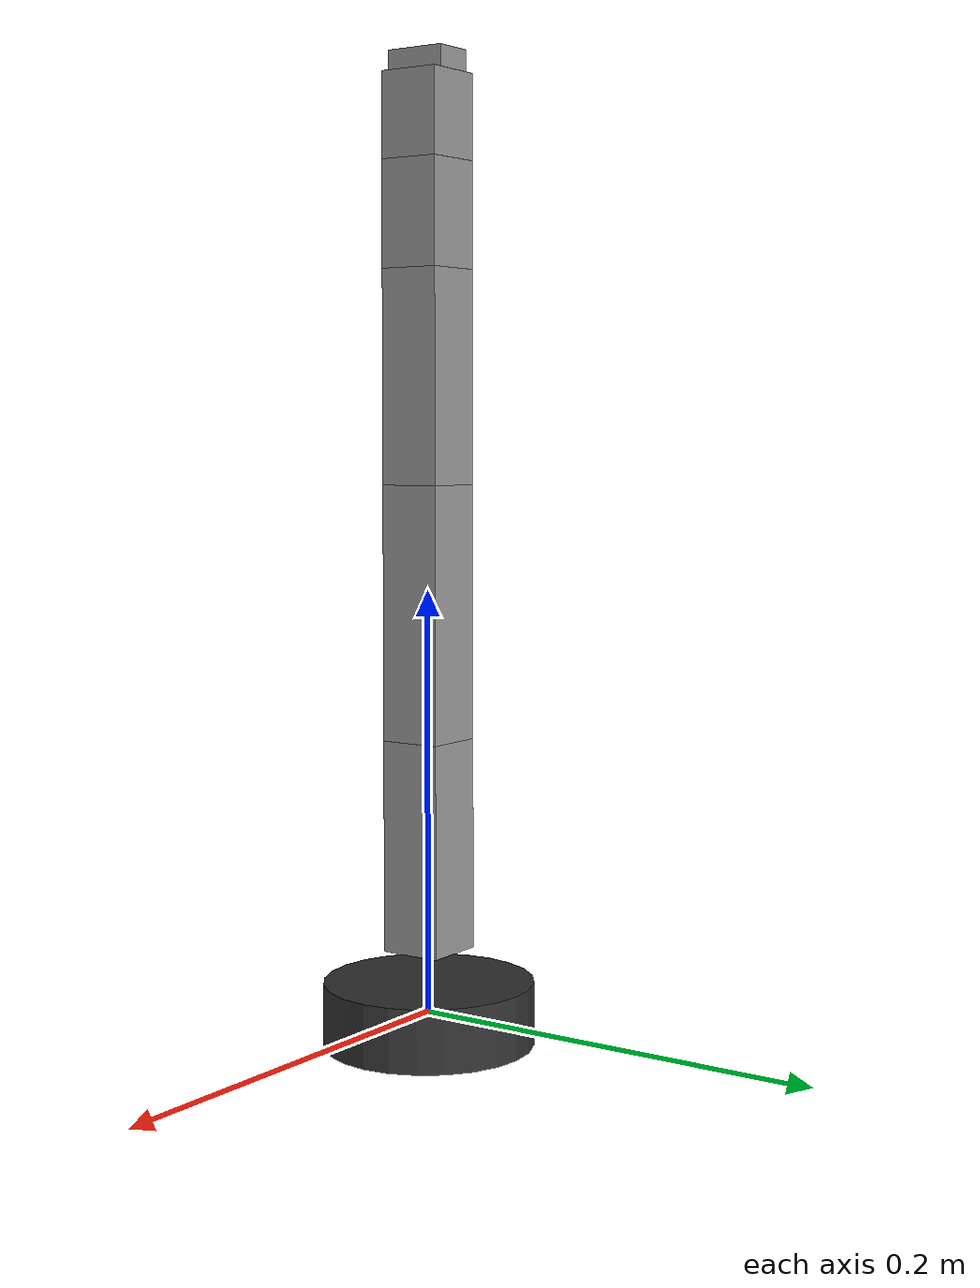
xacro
<?xml version="1.0"?>
<robot name="six_axis_arm" xmlns:xacro="http://www.ros.org/wiki/xacro">

  <material name="grey"><color rgba="0.6 0.6 0.6 1"/></material>
  <material name="dark"><color rgba="0.2 0.2 0.2 1"/></material>

  <link name="base_link">
    <visual>
      <geometry><cylinder radius="0.05" length="0.03"/></geometry>
      <material name="dark"/>
    </visual>
    <collision>
      <geometry><cylinder radius="0.05" length="0.03"/></geometry>
    </collision>
    <inertial>
      <mass value="0.3"/>
      <inertia ixx="0.001" ixy="0" ixz="0" iyy="0.001" iyz="0" izz="0.001"/>
    </inertial>
  </link>

  <xacro:macro name="link_box" params="name length mass">
    <link name="${name}">
      <visual>
        <origin xyz="0 0 ${length/2}" rpy="0 0 0"/>
        <geometry><box size="0.03 0.03 ${length}"/></geometry>
        <material name="grey"/>
      </visual>
      <collision>
        <origin xyz="0 0 ${length/2}" rpy="0 0 0"/>
        <geometry><box size="0.03 0.03 ${length}"/></geometry>
      </collision>
      <inertial>
        <origin xyz="0 0 ${length/2}" rpy="0 0 0"/>
        <mass value="${mass}"/>
        <inertia ixx="0.0005" ixy="0" ixz="0" iyy="0.0005" iyz="0" izz="0.0002"/>
      </inertial>
    </link>
  </xacro:macro>

  <xacro:link_box name="link_shoulder" length="0.10" mass="0.15"/>
  <xacro:link_box name="link_upper_arm" length="0.12" mass="0.15"/>
  <xacro:link_box name="link_forearm" length="0.10" mass="0.10"/>
  <xacro:link_box name="link_wrist" length="0.05" mass="0.05"/>
  <xacro:link_box name="link_gripper_base" length="0.04" mass="0.05"/>

  <!-- 0: base rotation, MG995, +/-90 deg about Z -->
  <joint name="joint_base" type="revolute">
    <parent link="base_link"/>
    <child link="link_shoulder"/>
    <origin xyz="0 0 0.03" rpy="0 0 0"/>
    <axis xyz="0 0 1"/>
    <limit lower="-1.5708" upper="1.5708" effort="10" velocity="1.5"/>
  </joint>

  <!-- 1: shoulder, MG995, +/-90 deg about Y -->
  <joint name="joint_shoulder" type="revolute">
    <parent link="link_shoulder"/>
    <child link="link_upper_arm"/>
    <origin xyz="0 0 0.10" rpy="0 0 0"/>
    <axis xyz="0 1 0"/>
    <limit lower="-1.5708" upper="1.5708" effort="10" velocity="1.5"/>
  </joint>

  <!-- 2: elbow, MG995, +/-90 deg about Y -->
  <joint name="joint_elbow" type="revolute">
    <parent link="link_upper_arm"/>
    <child link="link_forearm"/>
    <origin xyz="0 0 0.12" rpy="0 0 0"/>
    <axis xyz="0 1 0"/>
    <limit lower="-1.5708" upper="1.5708" effort="8" velocity="1.5"/>
  </joint>

  <!-- 3: wrist pitch, SG90, +/-90 deg about Y -->
  <joint name="joint_wrist_pitch" type="revolute">
    <parent link="link_forearm"/>
    <child link="link_wrist"/>
    <origin xyz="0 0 0.10" rpy="0 0 0"/>
    <axis xyz="0 1 0"/>
    <limit lower="-1.5708" upper="1.5708" effort="2" velocity="2.0"/>
  </joint>

  <!-- 4: wrist roll, SG90, +/-90 deg about Z -->
  <joint name="joint_wrist_roll" type="revolute">
    <parent link="link_wrist"/>
    <child link="link_gripper_base"/>
    <origin xyz="0 0 0.05" rpy="0 0 0"/>
    <axis xyz="0 0 1"/>
    <limit lower="-1.5708" upper="1.5708" effort="1" velocity="2.0"/>
  </joint>

  <!-- 5: gripper open/close, SG90 -->
  <link name="link_gripper_finger">
    <visual>
      <geometry><box size="0.02 0.03 0.02"/></geometry>
      <material name="grey"/>
    </visual>
    <collision>
      <geometry><box size="0.02 0.03 0.02"/></geometry>
    </collision>
    <inertial>
      <mass value="0.02"/>
      <inertia ixx="0.0001" ixy="0" ixz="0" iyy="0.0001" iyz="0" izz="0.0001"/>
    </inertial>
  </link>

  <joint name="joint_gripper" type="revolute">
    <parent link="link_gripper_base"/>
    <child link="link_gripper_finger"/>
    <origin xyz="0 0 0.04" rpy="0 0 0"/>
    <axis xyz="0 0 1"/>
    <limit lower="0" upper="1.0472" effort="1" velocity="2.0"/>
  </joint>

</robot>
